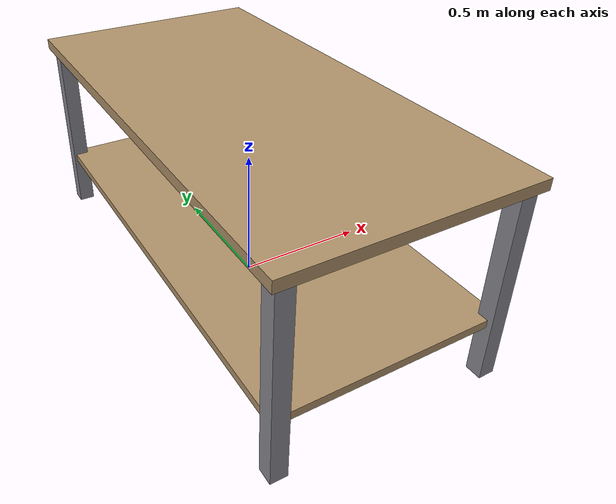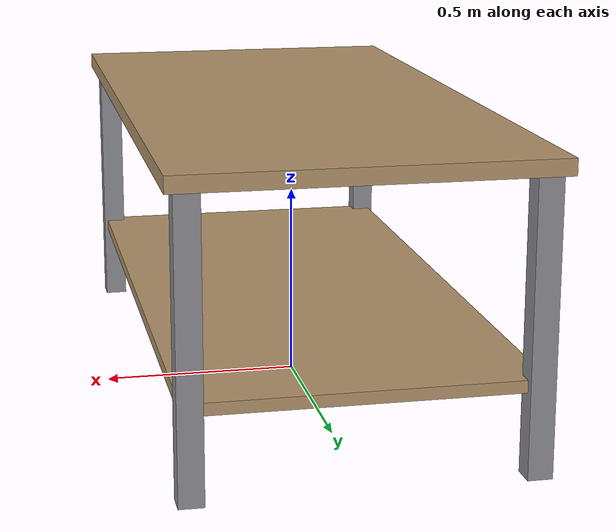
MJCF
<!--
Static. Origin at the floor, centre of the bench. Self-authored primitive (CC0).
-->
<mujoco model="packing_bench">
  <asset>
    <material name="mat" rgba="0.55 0.55 0.58 1"/>
    <material name="deck_mat" rgba="0.70 0.58 0.42 1"/>
  </asset>
  <worldbody>
    <body name="packing_bench">
      <geom name="top" type="box" size="0.45 0.9 0.02" pos="0 0 0.73" material="deck_mat" friction="0.8 0.01 0.0002" condim="4"/>
      <geom name="lower_shelf" type="box" size="0.42 0.86 0.015" pos="0 0 0.22" material="deck_mat" friction="0.8 0.01 0.0002" condim="4"/>
      <geom name="leg0" type="box" size="0.03 0.03 0.365" pos="0.40 0.85 0.365" material="mat" contype="0" conaffinity="0"/>
      <geom name="leg1" type="box" size="0.03 0.03 0.365" pos="0.40 -0.85 0.365" material="mat" contype="0" conaffinity="0"/>
      <geom name="leg2" type="box" size="0.03 0.03 0.365" pos="-0.40 0.85 0.365" material="mat" contype="0" conaffinity="0"/>
      <geom name="leg3" type="box" size="0.03 0.03 0.365" pos="-0.40 -0.85 0.365" material="mat" contype="0" conaffinity="0"/>
    </body>
  </worldbody>
</mujoco>
